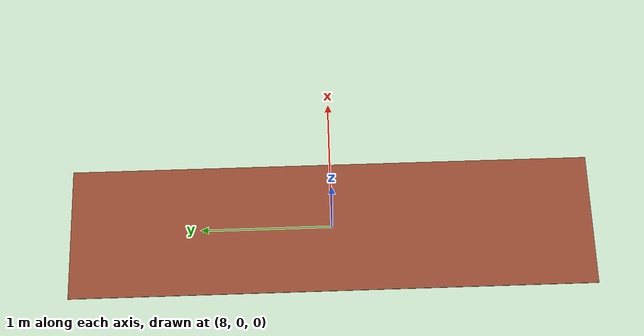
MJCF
<?xml version="1.0" ?>
<mujoco>
    <compiler angle="degree" inertiafromgeom="true"/>

    <option timestep="0.005" />
    <default>
        <joint armature="1" damping="1" limited="true"/>
        <geom conaffinity="1" condim="1" contype="1" margin="0.001" material="geom" rgba="0.8 0.6 .4 1"/>
        <motor ctrllimited="true" ctrlrange="-.4 .4"/>
    </default>
    <option integrator="RK4" iterations="50" solver="PGS" timestep="0.003">
    </option>
    <size nkey="5" nuser_geom="1"/>
    <asset>
        <texture builtin="gradient" height="100" rgb1="0.6 0.7 1.0" rgb2="0.2 0.3 0.5" type="skybox" width="100"/>

        <texture builtin="flat" height="1278" mark="cross" markrgb="1 1 1" name="texgeom" random="0.01" rgb1="0.6 0.6 0.6" rgb2="0.5 0.5 0.5" type="cube" width="127"/>

        <material name="MatPlane" reflectance="0.0" shininess="0.1" specular="0" texrepeat="60 60"/>
        <material name="geom" texture="texgeom" texuniform="true"/>
    </asset>

    <worldbody>
    <geom name="bump4" type="box" pos="8 0 0.0" size="0.5 2 0.005" rgba="0.6 0.3 0.2 1" conaffinity="255"/>
        <geom condim="3" friction="1 .1 .1" material="MatPlane" name="floor" pos="0 0 0" rgba="0.8 0.9 0.8 1" size="20 20 0.125" type="plane" contype="1" conaffinity="255"/>
        <camera euler="0 0 0" fovy="40" name="rgb" pos="0 0 2.5"></camera>
        BODIES_
    </worldbody>
    <actuator>
        ACTUATORS_
    </actuator>
    <tendon>
        TENDONS_
    </tendon>
</mujoco>
